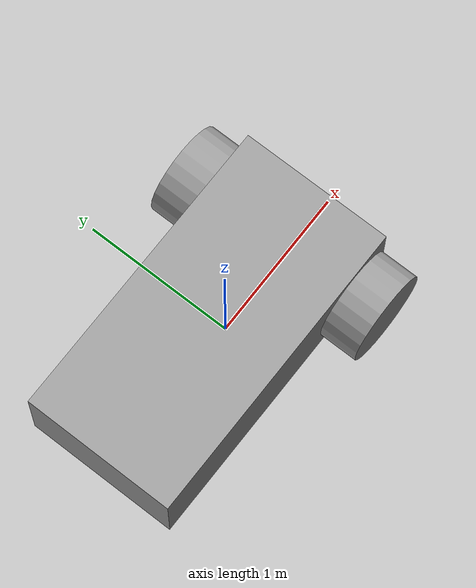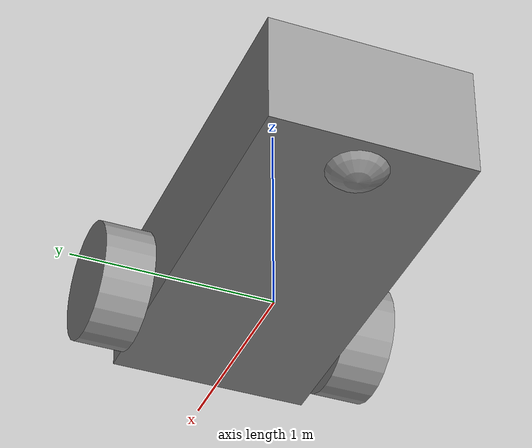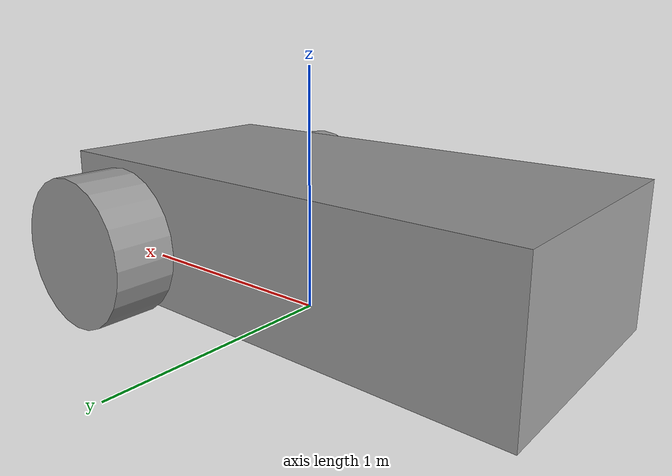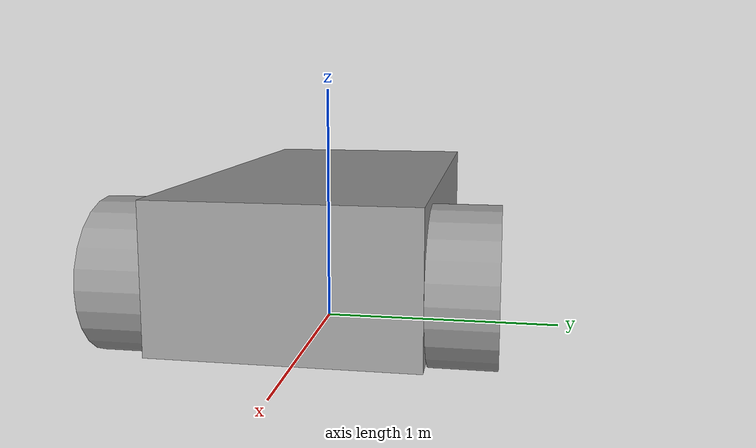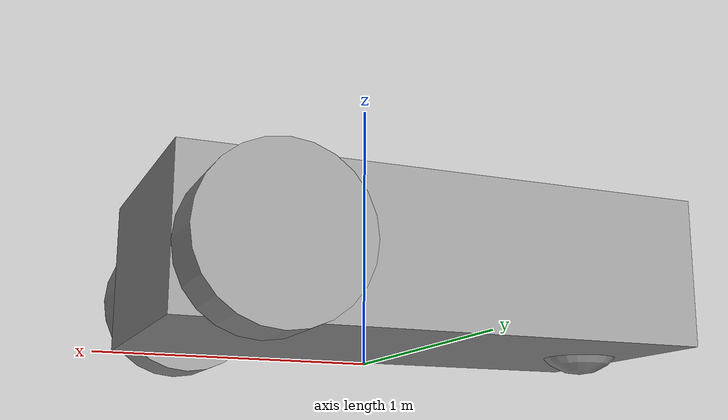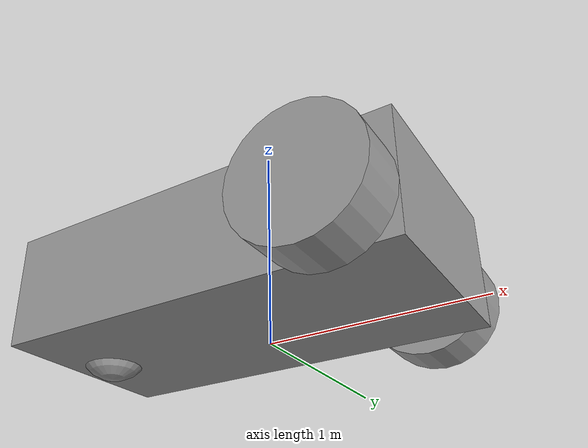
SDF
<?xml version='1.0'?>
<sdf version='1.6'>
  <model name='follower_vehicle'>
    <pose frame=''>0 0 0 0 0 0</pose>
    <link name='chassis'>
      <pose frame=''>-0.151427 0 0.35 0 0 0</pose>
      <inertial>
        <mass>10</mass>
        <inertia>
          <ixx>0.126164</ixx>
          <ixy>0</ixy>
          <ixz>0</ixz>
          <iyy>0.416519</iyy>
          <iyz>0</iyz>
          <izz>0.481014</izz>
        </inertia>
        <pose frame=''>0 0 0 0 -0 0</pose>
      </inertial>
      <self_collide>0</self_collide>
      <visual name='visual'>
        <pose frame=''>0 0 0 0 -0 0</pose>
        <geometry>
          <box>
            <size>2.01142 1 0.568726</size>
          </box>
        </geometry>
        <material>
          <script>
            <uri>file://media/materials/scripts/gazebo.material</uri>
            <name>Gazebo/Grey</name>
          </script>
        </material>
        <cast_shadows>1</cast_shadows>
        <transparency>0</transparency>
      </visual>
      <collision name='collision'>
        <pose frame=''>0 0 0 0 -0 0</pose>
        <geometry>
          <box>
            <size>2.01142 1 0.568726</size>
          </box>
        </geometry>
        <surface>
          <friction>
            <ode>
              <mu>1</mu>
              <mu2>1</mu2>
              <fdir1>0 0 0</fdir1>
              <slip1>0</slip1>
              <slip2>0</slip2>
            </ode>
          </friction>
          <bounce>
            <restitution_coefficient>0</restitution_coefficient>
            <threshold>1e+06</threshold>
          </bounce>
          <contact>
            <collide_without_contact>0</collide_without_contact>
            <collide_without_contact_bitmask>1</collide_without_contact_bitmask>
            <collide_bitmask>1</collide_bitmask>
            <ode>
              <soft_cfm>0</soft_cfm>
              <soft_erp>0.2</soft_erp>
              <kp>1e+13</kp>
              <kd>1</kd>
              <max_vel>0.01</max_vel>
              <min_depth>0</min_depth>
            </ode>
          </contact>
        </surface>
      </collision>
      <sensor name="rgb_camera" type="camera">

          <camera>
              <horizontal_fov>1.047</horizontal_fov>

              <image>
                  <width>320</width>
                  <height>240</height>
                  <format>R8G8B8</format>
              </image>

              <clip>
                  <near>0.1</near>
                  <far>100</far>
              </clip>

          </camera>

          <always_on>true</always_on>
          <update_rate>30</update_rate>

      </sensor>

      <sensor name="depth_camera" type="depth">

          <camera>

              <horizontal_fov>1.047</horizontal_fov>

              <image>
                  <width>320</width>
                  <height>240</height>
              </image>

              <clip>
                  <near>0.1</near>
                  <far>100</far>
              </clip>

          </camera>

          <always_on>true</always_on>
          <update_rate>30</update_rate>

      </sensor>
    </link>
    <link name='wheel_1'>
      <pose frame=''>0.554283 0.625029 0.3 1.5707 0 0</pose>
      <inertial>
        <mass>0.5</mass>
        <inertia>
          <ixx>0.145833</ixx>
          <ixy>0</ixy>
          <ixz>0</ixz>
          <iyy>0.145833</iyy>
          <iyz>0</iyz>
          <izz>0.125</izz>
        </inertia>
        <pose frame=''>0 0 0 0 -0 0</pose>
      </inertial>
      <self_collide>0</self_collide>
      <visual name='visual'>
        <pose frame=''>0 0 0 0 -0 0</pose>
        <geometry>
          <cylinder>
            <radius>0.3</radius>
            <length>0.25</length>
          </cylinder>
        </geometry>
        <material>
          <script>
            <uri>file://media/materials/scripts/gazebo.material</uri>
            <name>Gazebo/Grey</name>
          </script>
        </material>
        <cast_shadows>1</cast_shadows>
        <transparency>0</transparency>
      </visual>
      <collision name='collision'>
        <pose frame=''>0 0 0 0 -0 0</pose>
        <geometry>
          <cylinder>
            <radius>0.3</radius>
            <length>0.25</length>
          </cylinder>
        </geometry>
        <surface>
          <friction>
            <ode>
              <mu>1</mu>
              <mu2>1</mu2>
              <fdir1>0 0 0</fdir1>
              <slip1>0</slip1>
              <slip2>0</slip2>
            </ode>
          </friction>
          <bounce>
            <restitution_coefficient>0</restitution_coefficient>
            <threshold>1e+06</threshold>
          </bounce>
          <contact>
            <collide_without_contact>0</collide_without_contact>
            <collide_without_contact_bitmask>1</collide_without_contact_bitmask>
            <collide_bitmask>1</collide_bitmask>
            <ode>
              <soft_cfm>0</soft_cfm>
              <soft_erp>0.2</soft_erp>
              <kp>1e+13</kp>
              <kd>1</kd>
              <max_vel>0.01</max_vel>
              <min_depth>0</min_depth>
            </ode>
          </contact>
        </surface>
      </collision>
    </link>
    <link name='wheel_2'>
      <pose frame=''>0.554282 -0.625029 0.3 1.5707 0 0</pose>
      <inertial>
        <mass>0.5</mass>
        <inertia>
          <ixx>0.145833</ixx>
          <ixy>0</ixy>
          <ixz>0</ixz>
          <iyy>0.145833</iyy>
          <iyz>0</iyz>
          <izz>0.125</izz>
        </inertia>
        <pose frame=''>0 0 0 0 -0 0</pose>
      </inertial>
      <self_collide>0</self_collide>
      <visual name='visual'>
        <pose frame=''>0 0 0 0 -0 0</pose>
        <geometry>
          <cylinder>
            <radius>0.3</radius>
            <length>0.25</length>
          </cylinder>
        </geometry>
        <material>
          <script>
            <uri>file://media/materials/scripts/gazebo.material</uri>
            <name>Gazebo/Grey</name>
          </script>
        </material>
        <cast_shadows>1</cast_shadows>
        <transparency>0</transparency>
      </visual>
      <collision name='collision'>
        <pose frame=''>0 0 0 0 -0 0</pose>
        <geometry>
          <cylinder>
            <radius>0.3</radius>
            <length>0.25</length>
          </cylinder>
        </geometry>
        <surface>
          <friction>
            <ode>
              <mu>1</mu>
              <mu2>1</mu2>
              <fdir1>0 0 0</fdir1>
              <slip1>0</slip1>
              <slip2>0</slip2>
            </ode>
          </friction>
          <bounce>
            <restitution_coefficient>0</restitution_coefficient>
            <threshold>1e+06</threshold>
          </bounce>
          <contact>
            <collide_without_contact>0</collide_without_contact>
            <collide_without_contact_bitmask>1</collide_without_contact_bitmask>
            <collide_bitmask>1</collide_bitmask>
            <ode>
              <soft_cfm>0</soft_cfm>
              <soft_erp>0.2</soft_erp>
              <kp>1e+13</kp>
              <kd>1</kd>
              <max_vel>0.01</max_vel>
              <min_depth>0</min_depth>
            </ode>
          </contact>
        </surface>
      </collision>
    </link>
    <link name='caster'>
        <pose>-0.957138 0 0.2 0 0 0</pose>
      <inertial>
        <mass>0.1</mass>
        <inertia>
          <ixx>0.1</ixx>
          <ixy>0</ixy>
          <ixz>0</ixz>
          <iyy>0.1</iyy>
          <iyz>0</iyz>
          <izz>0.1</izz>
        </inertia>
        <pose frame=''>0 0 0 0 -0 0</pose>
      </inertial>
      <self_collide>0</self_collide>
      <visual name='visual'>
        <pose frame=''>0 0 0 0 -0 0</pose>
        <geometry>
          <sphere>
            <radius>0.2</radius>
          </sphere>
        </geometry>
        <material>
          <script>
            <uri>file://media/materials/scripts/gazebo.material</uri>
            <name>Gazebo/Grey</name>
          </script>
        </material>
        <cast_shadows>1</cast_shadows>
        <transparency>0</transparency>
      </visual>
      <collision name='collision'>
        <pose frame=''>0 0 0 0 -0 0</pose>
        <geometry>
          <sphere>
            <radius>0.2</radius>
          </sphere>
        </geometry>
        <surface>
          <friction>
            <ode>
              <mu>0.3</mu>
              <mu2>0.3</mu2>
              <fdir1>0 0 0</fdir1>
              <slip1>0</slip1>
              <slip2>0</slip2>
            </ode>
          </friction>
          <bounce>
            <restitution_coefficient>0</restitution_coefficient>
            <threshold>1e+06</threshold>
          </bounce>
          <contact>
            <collide_without_contact>0</collide_without_contact>
            <collide_without_contact_bitmask>1</collide_without_contact_bitmask>
            <collide_bitmask>1</collide_bitmask>
            <ode>
              <soft_cfm>0</soft_cfm>
              <soft_erp>0.2</soft_erp>
              <kp>1e+13</kp>
              <kd>1</kd>
              <max_vel>0.01</max_vel>
              <min_depth>0</min_depth>
            </ode>
          </contact>
        </surface>
      </collision>
    </link>
    <joint name='chassis_wheel_2_revolute' type='revolute'>
      <parent>chassis</parent>
      <child>wheel_2</child>
      <pose frame=''>0 0 0 0 -0 0</pose>
      <axis>
        <xyz>0 0 1</xyz>
        <use_parent_model_frame>0</use_parent_model_frame>
        <limit>
          <lower>-1.79769e+308</lower>
          <upper>1.79769e+308</upper>
          <effort>-1</effort>
          <velocity>-1</velocity>
        </limit>
        <dynamics>
          <spring_reference>0</spring_reference>
          <spring_stiffness>0</spring_stiffness>
          <damping>0</damping>
          <friction>0</friction>
        </dynamics>
      </axis>
      <physics>
        <ode>
          <limit>
            <cfm>0</cfm>
            <erp>0.2</erp>
          </limit>
          <suspension>
            <cfm>0</cfm>
            <erp>0.2</erp>
          </suspension>
        </ode>
      </physics>
    </joint>
    <joint name='chassis_wheel_1_revolute' type='revolute'>

      <parent>chassis</parent>
      <child>wheel_1</child>

      <axis>
        <xyz>0 0 1</xyz>
      </axis>

    </joint>
    <joint name='chassis_caster_ball' type='ball'>
      <parent>chassis</parent>
      <child>caster</child>
      <pose frame=''>0 0 0 0 -0 0</pose>
      <physics>
        <ode>
          <limit>
            <cfm>0</cfm>
            <erp>0.2</erp>
          </limit>
          <suspension>
            <cfm>0</cfm>
            <erp>0.2</erp>
          </suspension>
        </ode>
      </physics>
    </joint>
    <static>0</static>
    <allow_auto_disable>1</allow_auto_disable>
    <plugin
      filename="gz-sim-diff-drive-system"
      name="gz::sim::systems::DiffDrive">

      <left_joint>chassis_wheel_1_revolute</left_joint>
      <right_joint>chassis_wheel_2_revolute</right_joint>

      <wheel_separation>1.25</wheel_separation>
      <wheel_radius>0.3</wheel_radius>

      <topic>/cmd_vel</topic>

    </plugin>

  </model>
</sdf>
